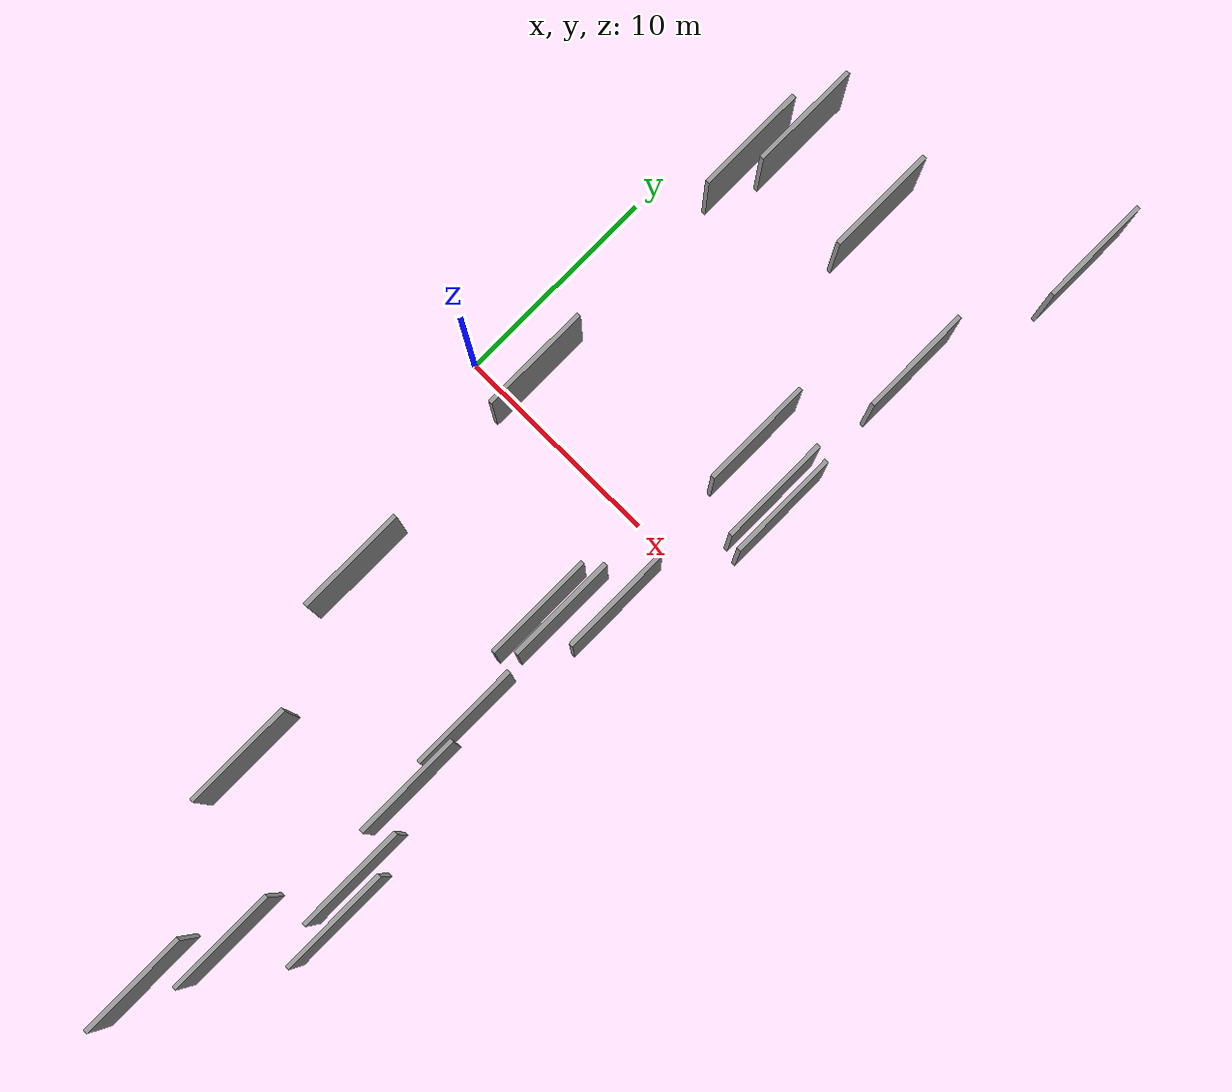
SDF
<sdf version="1.6">
 <world name="default">
  <scene>
   <sky><clouds><speed>12</speed></clouds></sky>
   <ambient>0.4 0.4 0.4 1</ambient>
   <background>0.7 0.7 0.7 1</background>
   <shadows>1</shadows>
  </scene>
  <gravity>0 0 -9.8066</gravity>
  <magnetic_field>6e-06 2.3e-05 -4.2e-05</magnetic_field>
  <physics default="0" name="default_physics" type="ode">
   <ode>
    <solver>
     <type>quick</type>
     <iters>10</iters>
     <sor>1.0</sor>
     <use_dynamic_moi_rescaling>0</use_dynamic_moi_rescaling>
    </solver>
    <constraints>
     <cfm>0</cfm>
     <erp>0.2</erp>
     <contact_max_correcting_vel>100</contact_max_correcting_vel>
     <contact_surface_layer>0.001</contact_surface_layer>
    </constraints>
   </ode>
   <max_step_size>0.004</max_step_size>
   <real_time_factor>1</real_time_factor>
   <real_time_update_rate>250</real_time_update_rate>
  </physics>
  <light name="sun" type="directional">
   <pose>0 0 10 0 0 0</pose>
   <diffuse>0.8 0.8 0.8 1</diffuse>
   <specular>0.2 0.2 0.2 1</specular>
   <attenuation>
    <range>1000</range>
    <constant>0.9</constant>
    <linear>0.01</linear>
    <quadratic>0.001</quadratic>
   </attenuation>
   <direction>-0.5 0.1 -0.9</direction>
  </light>
  <model name="grey_wall_1">
   <static>1</static>
   <pose>6.0862 -18.3670 5.0 0.000000 0.000000 1.570796</pose>
   <link name="link">
    <pose>0 0 2.50 0 0 0</pose>
    <collision name="collision"><geometry><box><size>5.00 0.2 5.00</size></box></geometry></collision>
    <visual name="visual">
     <cast_shadows>0</cast_shadows>
     <geometry><box><size>5.00 0.2 5.00</size></box></geometry>
     <material>
      <script>
       <uri>model://grey_wall/materials/scripts</uri>
       <uri>model://grey_wall/materials/textures</uri>
       <name>vrc/grey_wall</name>
      </script>
     </material>
    </visual>
   </link>
  </model>
  <model name="grey_wall_2">
   <static>1</static>
   <pose>3.2298 0.9147 5.0 0.000000 0.000000 1.570796</pose>
   <link name="link">
    <pose>0 0 2.50 0 0 0</pose>
    <collision name="collision"><geometry><box><size>5.00 0.2 5.00</size></box></geometry></collision>
    <visual name="visual">
     <cast_shadows>0</cast_shadows>
     <geometry><box><size>5.00 0.2 5.00</size></box></geometry>
     <material>
      <script>
       <uri>model://grey_wall/materials/scripts</uri>
       <uri>model://grey_wall/materials/textures</uri>
       <name>vrc/grey_wall</name>
      </script>
     </material>
    </visual>
   </link>
  </model>
  <model name="grey_wall_3">
   <static>1</static>
   <pose>10.7803 -23.8710 5.0 0.000000 0.000000 1.570796</pose>
   <link name="link">
    <pose>0 0 2.50 0 0 0</pose>
    <collision name="collision"><geometry><box><size>5.00 0.2 5.00</size></box></geometry></collision>
    <visual name="visual">
     <cast_shadows>0</cast_shadows>
     <geometry><box><size>5.00 0.2 5.00</size></box></geometry>
     <material>
      <script>
       <uri>model://grey_wall/materials/scripts</uri>
       <uri>model://grey_wall/materials/textures</uri>
       <name>vrc/grey_wall</name>
      </script>
     </material>
    </visual>
   </link>
  </model>
  <model name="grey_wall_4">
   <static>1</static>
   <pose>8.5567 15.2434 5.0 0.000000 0.000000 1.570796</pose>
   <link name="link">
    <pose>0 0 2.50 0 0 0</pose>
    <collision name="collision"><geometry><box><size>5.00 0.2 5.00</size></box></geometry></collision>
    <visual name="visual">
     <cast_shadows>0</cast_shadows>
     <geometry><box><size>5.00 0.2 5.00</size></box></geometry>
     <material>
      <script>
       <uri>model://grey_wall/materials/scripts</uri>
       <uri>model://grey_wall/materials/textures</uri>
       <name>vrc/grey_wall</name>
      </script>
     </material>
    </visual>
   </link>
  </model>
  <model name="grey_wall_5">
   <static>1</static>
   <pose>11.0155 -5.4281 5.0 0.000000 0.000000 1.570796</pose>
   <link name="link">
    <pose>0 0 2.50 0 0 0</pose>
    <collision name="collision"><geometry><box><size>5.00 0.2 5.00</size></box></geometry></collision>
    <visual name="visual">
     <cast_shadows>0</cast_shadows>
     <geometry><box><size>5.00 0.2 5.00</size></box></geometry>
     <material>
      <script>
       <uri>model://grey_wall/materials/scripts</uri>
       <uri>model://grey_wall/materials/textures</uri>
       <name>vrc/grey_wall</name>
      </script>
     </material>
    </visual>
   </link>
  </model>
  <model name="grey_wall_6">
   <static>1</static>
   <pose>10.3265 -6.0208 5.0 0.000000 0.000000 1.570796</pose>
   <link name="link">
    <pose>0 0 2.50 0 0 0</pose>
    <collision name="collision"><geometry><box><size>5.00 0.2 5.00</size></box></geometry></collision>
    <visual name="visual">
     <cast_shadows>0</cast_shadows>
     <geometry><box><size>5.00 0.2 5.00</size></box></geometry>
     <material>
      <script>
       <uri>model://grey_wall/materials/scripts</uri>
       <uri>model://grey_wall/materials/textures</uri>
       <name>vrc/grey_wall</name>
      </script>
     </material>
    </visual>
   </link>
  </model>
  <model name="grey_wall_7">
   <static>1</static>
   <pose>3.9384 15.5971 5.0 0.000000 0.000000 1.570796</pose>
   <link name="link">
    <pose>0 0 2.50 0 0 0</pose>
    <collision name="collision"><geometry><box><size>5.00 0.2 5.00</size></box></geometry></collision>
    <visual name="visual">
     <cast_shadows>0</cast_shadows>
     <geometry><box><size>5.00 0.2 5.00</size></box></geometry>
     <material>
      <script>
       <uri>model://grey_wall/materials/scripts</uri>
       <uri>model://grey_wall/materials/textures</uri>
       <name>vrc/grey_wall</name>
      </script>
     </material>
    </visual>
   </link>
  </model>
  <model name="grey_wall_8">
   <static>1</static>
   <pose>13.7003 3.8377 5.0 0.000000 0.000000 1.570796</pose>
   <link name="link">
    <pose>0 0 2.50 0 0 0</pose>
    <collision name="collision"><geometry><box><size>5.00 0.2 5.00</size></box></geometry></collision>
    <visual name="visual">
     <cast_shadows>0</cast_shadows>
     <geometry><box><size>5.00 0.2 5.00</size></box></geometry>
     <material>
      <script>
       <uri>model://grey_wall/materials/scripts</uri>
       <uri>model://grey_wall/materials/textures</uri>
       <name>vrc/grey_wall</name>
      </script>
     </material>
    </visual>
   </link>
  </model>
  <model name="grey_wall_9">
   <static>1</static>
   <pose>11.6025 4.9767 5.0 0.000000 0.000000 1.570796</pose>
   <link name="link">
    <pose>0 0 2.50 0 0 0</pose>
    <collision name="collision"><geometry><box><size>5.00 0.2 5.00</size></box></geometry></collision>
    <visual name="visual">
     <cast_shadows>0</cast_shadows>
     <geometry><box><size>5.00 0.2 5.00</size></box></geometry>
     <material>
      <script>
       <uri>model://grey_wall/materials/scripts</uri>
       <uri>model://grey_wall/materials/textures</uri>
       <name>vrc/grey_wall</name>
      </script>
     </material>
    </visual>
   </link>
  </model>
  <model name="grey_wall_10">
   <static>1</static>
   <pose>11.6328 -14.5725 5.0 0.000000 0.000000 1.570796</pose>
   <link name="link">
    <pose>0 0 2.50 0 0 0</pose>
    <collision name="collision"><geometry><box><size>5.00 0.2 5.00</size></box></geometry></collision>
    <visual name="visual">
     <cast_shadows>0</cast_shadows>
     <geometry><box><size>5.00 0.2 5.00</size></box></geometry>
     <material>
      <script>
       <uri>model://grey_wall/materials/scripts</uri>
       <uri>model://grey_wall/materials/textures</uri>
       <name>vrc/grey_wall</name>
      </script>
     </material>
    </visual>
   </link>
  </model>
  <model name="grey_wall_11">
   <static>1</static>
   <pose>14.0752 11.5162 5.0 0.000000 0.000000 1.570796</pose>
   <link name="link">
    <pose>0 0 2.50 0 0 0</pose>
    <collision name="collision"><geometry><box><size>5.00 0.2 5.00</size></box></geometry></collision>
    <visual name="visual">
     <cast_shadows>0</cast_shadows>
     <geometry><box><size>5.00 0.2 5.00</size></box></geometry>
     <material>
      <script>
       <uri>model://grey_wall/materials/scripts</uri>
       <uri>model://grey_wall/materials/textures</uri>
       <name>vrc/grey_wall</name>
      </script>
     </material>
    </visual>
   </link>
  </model>
  <model name="grey_wall_12">
   <static>1</static>
   <pose>13.3303 -20.2486 5.0 0.000000 0.000000 1.570796</pose>
   <link name="link">
    <pose>0 0 2.50 0 0 0</pose>
    <collision name="collision"><geometry><box><size>5.00 0.2 5.00</size></box></geometry></collision>
    <visual name="visual">
     <cast_shadows>0</cast_shadows>
     <geometry><box><size>5.00 0.2 5.00</size></box></geometry>
     <material>
      <script>
       <uri>model://grey_wall/materials/scripts</uri>
       <uri>model://grey_wall/materials/textures</uri>
       <name>vrc/grey_wall</name>
      </script>
     </material>
    </visual>
   </link>
  </model>
  <model name="grey_wall_13">
   <static>1</static>
   <pose>3.0769 13.3570 5.0 0.000000 0.000000 1.570796</pose>
   <link name="link">
    <pose>0 0 2.50 0 0 0</pose>
    <collision name="collision"><geometry><box><size>5.00 0.2 5.00</size></box></geometry></collision>
    <visual name="visual">
     <cast_shadows>0</cast_shadows>
     <geometry><box><size>5.00 0.2 5.00</size></box></geometry>
     <material>
      <script>
       <uri>model://grey_wall/materials/scripts</uri>
       <uri>model://grey_wall/materials/textures</uri>
       <name>vrc/grey_wall</name>
      </script>
     </material>
    </visual>
   </link>
  </model>
  <model name="grey_wall_14">
   <static>1</static>
   <pose>14.3510 3.6244 5.0 0.000000 0.000000 1.570796</pose>
   <link name="link">
    <pose>0 0 2.50 0 0 0</pose>
    <collision name="collision"><geometry><box><size>5.00 0.2 5.00</size></box></geometry></collision>
    <visual name="visual">
     <cast_shadows>0</cast_shadows>
     <geometry><box><size>5.00 0.2 5.00</size></box></geometry>
     <material>
      <script>
       <uri>model://grey_wall/materials/scripts</uri>
       <uri>model://grey_wall/materials/textures</uri>
       <name>vrc/grey_wall</name>
      </script>
     </material>
    </visual>
   </link>
  </model>
  <model name="grey_wall_15">
   <static>1</static>
   <pose>3.7795 -9.9066 5.0 0.000000 0.000000 1.570796</pose>
   <link name="link">
    <pose>0 0 2.50 0 0 0</pose>
    <collision name="collision"><geometry><box><size>5.00 0.2 5.00</size></box></geometry></collision>
    <visual name="visual">
     <cast_shadows>0</cast_shadows>
     <geometry><box><size>5.00 0.2 5.00</size></box></geometry>
     <material>
      <script>
       <uri>model://grey_wall/materials/scripts</uri>
       <uri>model://grey_wall/materials/textures</uri>
       <name>vrc/grey_wall</name>
      </script>
     </material>
    </visual>
   </link>
  </model>
  <model name="grey_wall_16">
   <static>1</static>
   <pose>16.0706 19.7544 5.0 0.000000 0.000000 1.570796</pose>
   <link name="link">
    <pose>0 0 2.50 0 0 0</pose>
    <collision name="collision"><geometry><box><size>5.00 0.2 5.00</size></box></geometry></collision>
    <visual name="visual">
     <cast_shadows>0</cast_shadows>
     <geometry><box><size>5.00 0.2 5.00</size></box></geometry>
     <material>
      <script>
       <uri>model://grey_wall/materials/scripts</uri>
       <uri>model://grey_wall/materials/textures</uri>
       <name>vrc/grey_wall</name>
      </script>
     </material>
    </visual>
   </link>
  </model>
  <model name="grey_wall_17">
   <static>1</static>
   <pose>12.6148 -18.6347 5.0 0.000000 0.000000 1.570796</pose>
   <link name="link">
    <pose>0 0 2.50 0 0 0</pose>
    <collision name="collision"><geometry><box><size>5.00 0.2 5.00</size></box></geometry></collision>
    <visual name="visual">
     <cast_shadows>0</cast_shadows>
     <geometry><box><size>5.00 0.2 5.00</size></box></geometry>
     <material>
      <script>
       <uri>model://grey_wall/materials/scripts</uri>
       <uri>model://grey_wall/materials/textures</uri>
       <name>vrc/grey_wall</name>
      </script>
     </material>
    </visual>
   </link>
  </model>
  <model name="grey_wall_18">
   <static>1</static>
   <pose>12.3109 -3.6896 5.0 0.000000 0.000000 1.570796</pose>
   <link name="link">
    <pose>0 0 2.50 0 0 0</pose>
    <collision name="collision"><geometry><box><size>5.00 0.2 5.00</size></box></geometry></collision>
    <visual name="visual">
     <cast_shadows>0</cast_shadows>
     <geometry><box><size>5.00 0.2 5.00</size></box></geometry>
     <material>
      <script>
       <uri>model://grey_wall/materials/scripts</uri>
       <uri>model://grey_wall/materials/textures</uri>
       <name>vrc/grey_wall</name>
      </script>
     </material>
    </visual>
   </link>
  </model>
  <model name="grey_wall_19">
   <static>1</static>
   <pose>9.5389 -27.4185 5.0 0.000000 0.000000 1.570796</pose>
   <link name="link">
    <pose>0 0 2.50 0 0 0</pose>
    <collision name="collision"><geometry><box><size>5.00 0.2 5.00</size></box></geometry></collision>
    <visual name="visual">
     <cast_shadows>0</cast_shadows>
     <geometry><box><size>5.00 0.2 5.00</size></box></geometry>
     <material>
      <script>
       <uri>model://grey_wall/materials/scripts</uri>
       <uri>model://grey_wall/materials/textures</uri>
       <name>vrc/grey_wall</name>
      </script>
     </material>
    </visual>
   </link>
  </model>
  <model name="grey_wall_20">
   <static>1</static>
   <pose>11.3097 -11.1087 5.0 0.000000 0.000000 1.570796</pose>
   <link name="link">
    <pose>0 0 2.50 0 0 0</pose>
    <collision name="collision"><geometry><box><size>5.00 0.2 5.00</size></box></geometry></collision>
    <visual name="visual">
     <cast_shadows>0</cast_shadows>
     <geometry><box><size>5.00 0.2 5.00</size></box></geometry>
     <material>
      <script>
       <uri>model://grey_wall/materials/scripts</uri>
       <uri>model://grey_wall/materials/textures</uri>
       <name>vrc/grey_wall</name>
      </script>
     </material>
    </visual>
   </link>
  </model>
 </world>
</sdf>
